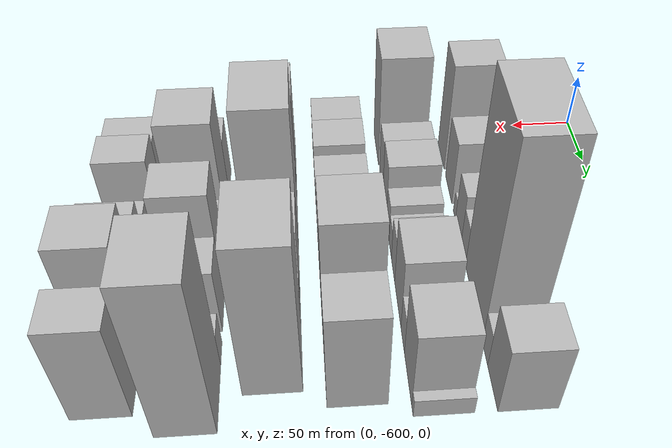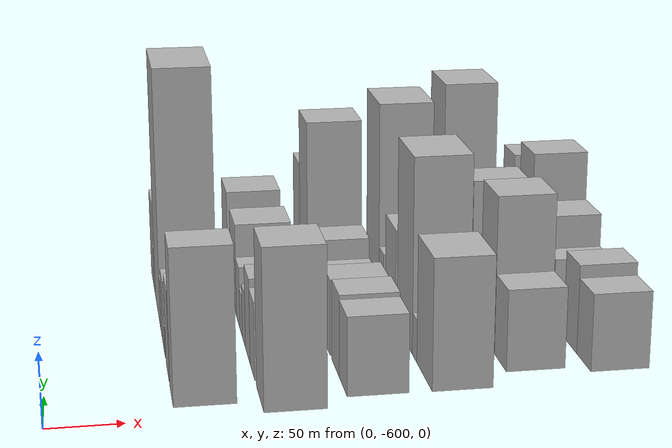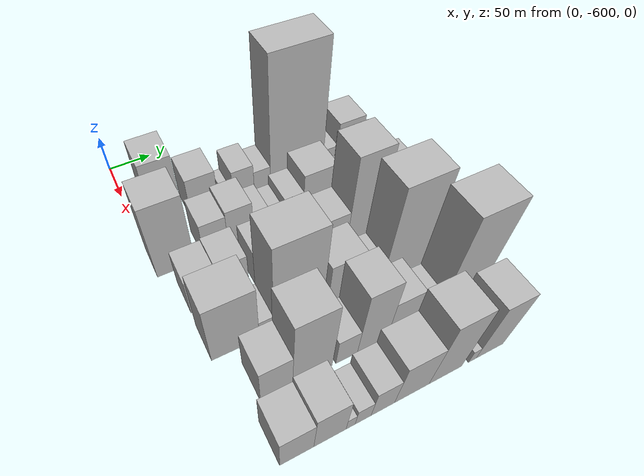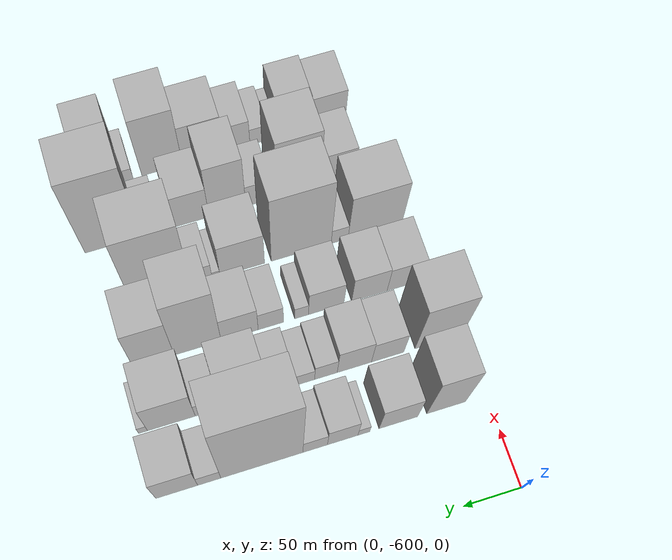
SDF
<sdf version="1.6">
 <world name="default">
  <model name="building_8">
   <static>1</static>
   <pose>100.0000 -564.1123 0 0.000000 0.000000 0.000000</pose>
   <link name="link">
    <pose>0 0 52.50 0 0 0</pose>
    <collision name="collision"><geometry><box><size>40.0000 33.9147 105.0000</size></box></geometry></collision>
    <visual name="visual">
     <cast_shadows>0</cast_shadows>
     <geometry><box><size>40.0000 33.9147 105.0000</size></box></geometry>
     <material>
      <script>
       <uri>model://HANNAS_wall/materials/scripts</uri>
       <uri>model://HANNAS_wall/materials/textures</uri>
       <name>vrc/HANNAS_wall</name>
      </script>
     </material>
    </visual>
   </link>
  </model>
  <model name="building_9">
   <static>1</static>
   <pose>100.0000 -522.4168 0 0.000000 0.000000 0.000000</pose>
   <link name="link">
    <pose>0 0 31.50 0 0 0</pose>
    <collision name="collision"><geometry><box><size>40.0000 33.4762 63.0000</size></box></geometry></collision>
    <visual name="visual">
     <cast_shadows>0</cast_shadows>
     <geometry><box><size>40.0000 33.4762 63.0000</size></box></geometry>
     <material>
      <script>
       <uri>model://HANNAS_wall/materials/scripts</uri>
       <uri>model://HANNAS_wall/materials/textures</uri>
       <name>vrc/HANNAS_wall</name>
      </script>
     </material>
    </visual>
   </link>
  </model>
  <model name="building_10">
   <static>1</static>
   <pose>100.0000 -492.5437 0 0.000000 0.000000 0.000000</pose>
   <link name="link">
    <pose>0 0 10.50 0 0 0</pose>
    <collision name="collision"><geometry><box><size>40.0000 10.2700 21.0000</size></box></geometry></collision>
    <visual name="visual">
     <cast_shadows>0</cast_shadows>
     <geometry><box><size>40.0000 10.2700 21.0000</size></box></geometry>
     <material>
      <script>
       <uri>model://HANNAS_wall/materials/scripts</uri>
       <uri>model://HANNAS_wall/materials/textures</uri>
       <name>vrc/HANNAS_wall</name>
      </script>
     </material>
    </visual>
   </link>
  </model>
  <model name="building_11">
   <static>1</static>
   <pose>100.0000 -474.2443 0 0.000000 0.000000 0.000000</pose>
   <link name="link">
    <pose>0 0 25.50 0 0 0</pose>
    <collision name="collision"><geometry><box><size>40.0000 26.3288 51.0000</size></box></geometry></collision>
    <visual name="visual">
     <cast_shadows>0</cast_shadows>
     <geometry><box><size>40.0000 26.3288 51.0000</size></box></geometry>
     <material>
      <script>
       <uri>model://HANNAS_wall/materials/scripts</uri>
       <uri>model://HANNAS_wall/materials/textures</uri>
       <name>vrc/HANNAS_wall</name>
      </script>
     </material>
    </visual>
   </link>
  </model>
  <model name="building_12">
   <static>1</static>
   <pose>100.0000 -450.5782 0 0.000000 0.000000 0.000000</pose>
   <link name="link">
    <pose>0 0 19.50 0 0 0</pose>
    <collision name="collision"><geometry><box><size>40.0000 21.0034 39.0000</size></box></geometry></collision>
    <visual name="visual">
     <cast_shadows>0</cast_shadows>
     <geometry><box><size>40.0000 21.0034 39.0000</size></box></geometry>
     <material>
      <script>
       <uri>model://HANNAS_wall/materials/scripts</uri>
       <uri>model://HANNAS_wall/materials/textures</uri>
       <name>vrc/HANNAS_wall</name>
      </script>
     </material>
    </visual>
   </link>
  </model>
  <model name="building_13">
   <static>1</static>
   <pose>100.0000 -405.2971 0 0.000000 0.000000 0.000000</pose>
   <link name="link">
    <pose>0 0 93.00 0 0 0</pose>
    <collision name="collision"><geometry><box><size>40.0000 69.5590 186.0000</size></box></geometry></collision>
    <visual name="visual">
     <cast_shadows>0</cast_shadows>
     <geometry><box><size>40.0000 69.5590 186.0000</size></box></geometry>
     <material>
      <script>
       <uri>model://HANNAS_wall/materials/scripts</uri>
       <uri>model://HANNAS_wall/materials/textures</uri>
       <name>vrc/HANNAS_wall</name>
      </script>
     </material>
    </visual>
   </link>
  </model>
  <model name="building_14">
   <static>1</static>
   <pose>100.0000 -360.7872 0 0.000000 0.000000 0.000000</pose>
   <link name="link">
    <pose>0 0 16.50 0 0 0</pose>
    <collision name="collision"><geometry><box><size>40.0000 19.4608 33.0000</size></box></geometry></collision>
    <visual name="visual">
     <cast_shadows>0</cast_shadows>
     <geometry><box><size>40.0000 19.4608 33.0000</size></box></geometry>
     <material>
      <script>
       <uri>model://HANNAS_wall/materials/scripts</uri>
       <uri>model://HANNAS_wall/materials/textures</uri>
       <name>vrc/HANNAS_wall</name>
      </script>
     </material>
    </visual>
   </link>
  </model>
  <model name="building_15">
   <static>1</static>
   <pose>100.0000 -333.5483 0 0.000000 0.000000 0.000000</pose>
   <link name="link">
    <pose>0 0 33.00 0 0 0</pose>
    <collision name="collision"><geometry><box><size>40.0000 35.0169 66.0000</size></box></geometry></collision>
    <visual name="visual">
     <cast_shadows>0</cast_shadows>
     <geometry><box><size>40.0000 35.0169 66.0000</size></box></geometry>
     <material>
      <script>
       <uri>model://HANNAS_wall/materials/scripts</uri>
       <uri>model://HANNAS_wall/materials/textures</uri>
       <name>vrc/HANNAS_wall</name>
      </script>
     </material>
    </visual>
   </link>
  </model>
  <model name="building_60">
   <static>1</static>
   <pose>155.0000 -577.2388 0 0.000000 0.000000 0.000000</pose>
   <link name="link">
    <pose>0 0 54.00 0 0 0</pose>
    <collision name="collision"><geometry><box><size>40.0000 42.0971 108.0000</size></box></geometry></collision>
    <visual name="visual">
     <cast_shadows>0</cast_shadows>
     <geometry><box><size>40.0000 42.0971 108.0000</size></box></geometry>
     <material>
      <script>
       <uri>model://HANNAS_wall/materials/scripts</uri>
       <uri>model://HANNAS_wall/materials/textures</uri>
       <name>vrc/HANNAS_wall</name>
      </script>
     </material>
    </visual>
   </link>
  </model>
  <model name="building_61">
   <static>1</static>
   <pose>155.0000 -531.8750 0 0.000000 0.000000 0.000000</pose>
   <link name="link">
    <pose>0 0 27.00 0 0 0</pose>
    <collision name="collision"><geometry><box><size>40.0000 28.6306 54.0000</size></box></geometry></collision>
    <visual name="visual">
     <cast_shadows>0</cast_shadows>
     <geometry><box><size>40.0000 28.6306 54.0000</size></box></geometry>
     <material>
      <script>
       <uri>model://HANNAS_wall/materials/scripts</uri>
       <uri>model://HANNAS_wall/materials/textures</uri>
       <name>vrc/HANNAS_wall</name>
      </script>
     </material>
    </visual>
   </link>
  </model>
  <model name="building_62">
   <static>1</static>
   <pose>155.0000 -502.5242 0 0.000000 0.000000 0.000000</pose>
   <link name="link">
    <pose>0 0 30.00 0 0 0</pose>
    <collision name="collision"><geometry><box><size>40.0000 30.0711 60.0000</size></box></geometry></collision>
    <visual name="visual">
     <cast_shadows>0</cast_shadows>
     <geometry><box><size>40.0000 30.0711 60.0000</size></box></geometry>
     <material>
      <script>
       <uri>model://HANNAS_wall/materials/scripts</uri>
       <uri>model://HANNAS_wall/materials/textures</uri>
       <name>vrc/HANNAS_wall</name>
      </script>
     </material>
    </visual>
   </link>
  </model>
  <model name="building_63">
   <static>1</static>
   <pose>155.0000 -477.6024 0 0.000000 0.000000 0.000000</pose>
   <link name="link">
    <pose>0 0 19.50 0 0 0</pose>
    <collision name="collision"><geometry><box><size>40.0000 19.7726 39.0000</size></box></geometry></collision>
    <visual name="visual">
     <cast_shadows>0</cast_shadows>
     <geometry><box><size>40.0000 19.7726 39.0000</size></box></geometry>
     <material>
      <script>
       <uri>model://HANNAS_wall/materials/scripts</uri>
       <uri>model://HANNAS_wall/materials/textures</uri>
       <name>vrc/HANNAS_wall</name>
      </script>
     </material>
    </visual>
   </link>
  </model>
  <model name="building_64">
   <static>1</static>
   <pose>155.0000 -458.9212 0 0.000000 0.000000 0.000000</pose>
   <link name="link">
    <pose>0 0 15.00 0 0 0</pose>
    <collision name="collision"><geometry><box><size>40.0000 17.5897 30.0000</size></box></geometry></collision>
    <visual name="visual">
     <cast_shadows>0</cast_shadows>
     <geometry><box><size>40.0000 17.5897 30.0000</size></box></geometry>
     <material>
      <script>
       <uri>model://HANNAS_wall/materials/scripts</uri>
       <uri>model://HANNAS_wall/materials/textures</uri>
       <name>vrc/HANNAS_wall</name>
      </script>
     </material>
    </visual>
   </link>
  </model>
  <model name="building_65">
   <static>1</static>
   <pose>155.0000 -438.3830 0 0.000000 0.000000 0.000000</pose>
   <link name="link">
    <pose>0 0 22.50 0 0 0</pose>
    <collision name="collision"><geometry><box><size>40.0000 23.4865 45.0000</size></box></geometry></collision>
    <visual name="visual">
     <cast_shadows>0</cast_shadows>
     <geometry><box><size>40.0000 23.4865 45.0000</size></box></geometry>
     <material>
      <script>
       <uri>model://HANNAS_wall/materials/scripts</uri>
       <uri>model://HANNAS_wall/materials/textures</uri>
       <name>vrc/HANNAS_wall</name>
      </script>
     </material>
    </visual>
   </link>
  </model>
  <model name="building_66">
   <static>1</static>
   <pose>155.0000 -406.3846 0 0.000000 0.000000 0.000000</pose>
   <link name="link">
    <pose>0 0 34.50 0 0 0</pose>
    <collision name="collision"><geometry><box><size>40.0000 40.5104 69.0000</size></box></geometry></collision>
    <visual name="visual">
     <cast_shadows>0</cast_shadows>
     <geometry><box><size>40.0000 40.5104 69.0000</size></box></geometry>
     <material>
      <script>
       <uri>model://HANNAS_wall/materials/scripts</uri>
       <uri>model://HANNAS_wall/materials/textures</uri>
       <name>vrc/HANNAS_wall</name>
      </script>
     </material>
    </visual>
   </link>
  </model>
  <model name="building_67">
   <static>1</static>
   <pose>155.0000 -375.4196 0 0.000000 0.000000 0.000000</pose>
   <link name="link">
    <pose>0 0 18.00 0 0 0</pose>
    <collision name="collision"><geometry><box><size>40.0000 21.4194 36.0000</size></box></geometry></collision>
    <visual name="visual">
     <cast_shadows>0</cast_shadows>
     <geometry><box><size>40.0000 21.4194 36.0000</size></box></geometry>
     <material>
      <script>
       <uri>model://HANNAS_wall/materials/scripts</uri>
       <uri>model://HANNAS_wall/materials/textures</uri>
       <name>vrc/HANNAS_wall</name>
      </script>
     </material>
    </visual>
   </link>
  </model>
  <model name="building_68">
   <static>1</static>
   <pose>155.0000 -344.3547 0 0.000000 0.000000 0.000000</pose>
   <link name="link">
    <pose>0 0 37.50 0 0 0</pose>
    <collision name="collision"><geometry><box><size>40.0000 40.7104 75.0000</size></box></geometry></collision>
    <visual name="visual">
     <cast_shadows>0</cast_shadows>
     <geometry><box><size>40.0000 40.7104 75.0000</size></box></geometry>
     <material>
      <script>
       <uri>model://HANNAS_wall/materials/scripts</uri>
       <uri>model://HANNAS_wall/materials/textures</uri>
       <name>vrc/HANNAS_wall</name>
      </script>
     </material>
    </visual>
   </link>
  </model>
  <model name="building_69">
   <static>1</static>
   <pose>155.0000 -320.2169 0 0.000000 0.000000 0.000000</pose>
   <link name="link">
    <pose>0 0 9.00 0 0 0</pose>
    <collision name="collision"><geometry><box><size>40.0000 7.5652 18.0000</size></box></geometry></collision>
    <visual name="visual">
     <cast_shadows>0</cast_shadows>
     <geometry><box><size>40.0000 7.5652 18.0000</size></box></geometry>
     <material>
      <script>
       <uri>model://HANNAS_wall/materials/scripts</uri>
       <uri>model://HANNAS_wall/materials/textures</uri>
       <name>vrc/HANNAS_wall</name>
      </script>
     </material>
    </visual>
   </link>
  </model>
  <model name="building_109">
   <static>1</static>
   <pose>210.0000 -566.1874 0 0.000000 0.000000 0.000000</pose>
   <link name="link">
    <pose>0 0 27.00 0 0 0</pose>
    <collision name="collision"><geometry><box><size>40.0000 31.9362 54.0000</size></box></geometry></collision>
    <visual name="visual">
     <cast_shadows>0</cast_shadows>
     <geometry><box><size>40.0000 31.9362 54.0000</size></box></geometry>
     <material>
      <script>
       <uri>model://HANNAS_wall/materials/scripts</uri>
       <uri>model://HANNAS_wall/materials/textures</uri>
       <name>vrc/HANNAS_wall</name>
      </script>
     </material>
    </visual>
   </link>
  </model>
  <model name="building_110">
   <static>1</static>
   <pose>210.0000 -534.3283 0 0.000000 0.000000 0.000000</pose>
   <link name="link">
    <pose>0 0 28.50 0 0 0</pose>
    <collision name="collision"><geometry><box><size>40.0000 31.7820 57.0000</size></box></geometry></collision>
    <visual name="visual">
     <cast_shadows>0</cast_shadows>
     <geometry><box><size>40.0000 31.7820 57.0000</size></box></geometry>
     <material>
      <script>
       <uri>model://HANNAS_wall/materials/scripts</uri>
       <uri>model://HANNAS_wall/materials/textures</uri>
       <name>vrc/HANNAS_wall</name>
      </script>
     </material>
    </visual>
   </link>
  </model>
  <model name="building_111">
   <static>1</static>
   <pose>210.0000 -495.6723 0 0.000000 0.000000 0.000000</pose>
   <link name="link">
    <pose>0 0 27.00 0 0 0</pose>
    <collision name="collision"><geometry><box><size>40.0000 31.5301 54.0000</size></box></geometry></collision>
    <visual name="visual">
     <cast_shadows>0</cast_shadows>
     <geometry><box><size>40.0000 31.5301 54.0000</size></box></geometry>
     <material>
      <script>
       <uri>model://HANNAS_wall/materials/scripts</uri>
       <uri>model://HANNAS_wall/materials/textures</uri>
       <name>vrc/HANNAS_wall</name>
      </script>
     </material>
    </visual>
   </link>
  </model>
  <model name="building_112">
   <static>1</static>
   <pose>210.0000 -473.8277 0 0.000000 0.000000 0.000000</pose>
   <link name="link">
    <pose>0 0 13.50 0 0 0</pose>
    <collision name="collision"><geometry><box><size>40.0000 12.1591 27.0000</size></box></geometry></collision>
    <visual name="visual">
     <cast_shadows>0</cast_shadows>
     <geometry><box><size>40.0000 12.1591 27.0000</size></box></geometry>
     <material>
      <script>
       <uri>model://HANNAS_wall/materials/scripts</uri>
       <uri>model://HANNAS_wall/materials/textures</uri>
       <name>vrc/HANNAS_wall</name>
      </script>
     </material>
    </visual>
   </link>
  </model>
  <model name="building_113">
   <static>1</static>
   <pose>210.0000 -446.6222 0 0.000000 0.000000 0.000000</pose>
   <link name="link">
    <pose>0 0 21.00 0 0 0</pose>
    <collision name="collision"><geometry><box><size>40.0000 22.2520 42.0000</size></box></geometry></collision>
    <visual name="visual">
     <cast_shadows>0</cast_shadows>
     <geometry><box><size>40.0000 22.2520 42.0000</size></box></geometry>
     <material>
      <script>
       <uri>model://HANNAS_wall/materials/scripts</uri>
       <uri>model://HANNAS_wall/materials/textures</uri>
       <name>vrc/HANNAS_wall</name>
      </script>
     </material>
    </visual>
   </link>
  </model>
  <model name="building_114">
   <static>1</static>
   <pose>210.0000 -419.2208 0 0.000000 0.000000 0.000000</pose>
   <link name="link">
    <pose>0 0 28.50 0 0 0</pose>
    <collision name="collision"><geometry><box><size>40.0000 32.5506 57.0000</size></box></geometry></collision>
    <visual name="visual">
     <cast_shadows>0</cast_shadows>
     <geometry><box><size>40.0000 32.5506 57.0000</size></box></geometry>
     <material>
      <script>
       <uri>model://HANNAS_wall/materials/scripts</uri>
       <uri>model://HANNAS_wall/materials/textures</uri>
       <name>vrc/HANNAS_wall</name>
      </script>
     </material>
    </visual>
   </link>
  </model>
  <model name="building_115">
   <static>1</static>
   <pose>210.0000 -382.5174 0 0.000000 0.000000 0.000000</pose>
   <link name="link">
    <pose>0 0 67.50 0 0 0</pose>
    <collision name="collision"><geometry><box><size>40.0000 40.8563 135.0000</size></box></geometry></collision>
    <visual name="visual">
     <cast_shadows>0</cast_shadows>
     <geometry><box><size>40.0000 40.8563 135.0000</size></box></geometry>
     <material>
      <script>
       <uri>model://HANNAS_wall/materials/scripts</uri>
       <uri>model://HANNAS_wall/materials/textures</uri>
       <name>vrc/HANNAS_wall</name>
      </script>
     </material>
    </visual>
   </link>
  </model>
  <model name="building_116">
   <static>1</static>
   <pose>210.0000 -344.3401 0 0.000000 0.000000 0.000000</pose>
   <link name="link">
    <pose>0 0 46.50 0 0 0</pose>
    <collision name="collision"><geometry><box><size>40.0000 35.4983 93.0000</size></box></geometry></collision>
    <visual name="visual">
     <cast_shadows>0</cast_shadows>
     <geometry><box><size>40.0000 35.4983 93.0000</size></box></geometry>
     <material>
      <script>
       <uri>model://HANNAS_wall/materials/scripts</uri>
       <uri>model://HANNAS_wall/materials/textures</uri>
       <name>vrc/HANNAS_wall</name>
      </script>
     </material>
    </visual>
   </link>
  </model>
  <model name="building_157">
   <static>1</static>
   <pose>265.0000 -558.1128 0 0.000000 0.000000 0.000000</pose>
   <link name="link">
    <pose>0 0 45.00 0 0 0</pose>
    <collision name="collision"><geometry><box><size>40.0000 49.4691 90.0000</size></box></geometry></collision>
    <visual name="visual">
     <cast_shadows>0</cast_shadows>
     <geometry><box><size>40.0000 49.4691 90.0000</size></box></geometry>
     <material>
      <script>
       <uri>model://HANNAS_wall/materials/scripts</uri>
       <uri>model://HANNAS_wall/materials/textures</uri>
       <name>vrc/HANNAS_wall</name>
      </script>
     </material>
    </visual>
   </link>
  </model>
  <model name="building_158">
   <static>1</static>
   <pose>265.0000 -525.6977 0 0.000000 0.000000 0.000000</pose>
   <link name="link">
    <pose>0 0 15.00 0 0 0</pose>
    <collision name="collision"><geometry><box><size>40.0000 15.3612 30.0000</size></box></geometry></collision>
    <visual name="visual">
     <cast_shadows>0</cast_shadows>
     <geometry><box><size>40.0000 15.3612 30.0000</size></box></geometry>
     <material>
      <script>
       <uri>model://HANNAS_wall/materials/scripts</uri>
       <uri>model://HANNAS_wall/materials/textures</uri>
       <name>vrc/HANNAS_wall</name>
      </script>
     </material>
    </visual>
   </link>
  </model>
  <model name="building_159">
   <static>1</static>
   <pose>265.0000 -490.9596 0 0.000000 0.000000 0.000000</pose>
   <link name="link">
    <pose>0 0 69.00 0 0 0</pose>
    <collision name="collision"><geometry><box><size>40.0000 54.1150 138.0000</size></box></geometry></collision>
    <visual name="visual">
     <cast_shadows>0</cast_shadows>
     <geometry><box><size>40.0000 54.1150 138.0000</size></box></geometry>
     <material>
      <script>
       <uri>model://HANNAS_wall/materials/scripts</uri>
       <uri>model://HANNAS_wall/materials/textures</uri>
       <name>vrc/HANNAS_wall</name>
      </script>
     </material>
    </visual>
   </link>
  </model>
  <model name="building_160">
   <static>1</static>
   <pose>265.0000 -438.0370 0 0.000000 0.000000 0.000000</pose>
   <link name="link">
    <pose>0 0 34.50 0 0 0</pose>
    <collision name="collision"><geometry><box><size>40.0000 39.7303 69.0000</size></box></geometry></collision>
    <visual name="visual">
     <cast_shadows>0</cast_shadows>
     <geometry><box><size>40.0000 39.7303 69.0000</size></box></geometry>
     <material>
      <script>
       <uri>model://HANNAS_wall/materials/scripts</uri>
       <uri>model://HANNAS_wall/materials/textures</uri>
       <name>vrc/HANNAS_wall</name>
      </script>
     </material>
    </visual>
   </link>
  </model>
  <model name="building_161">
   <static>1</static>
   <pose>265.0000 -414.6934 0 0.000000 0.000000 0.000000</pose>
   <link name="link">
    <pose>0 0 7.50 0 0 0</pose>
    <collision name="collision"><geometry><box><size>40.0000 6.9567 15.0000</size></box></geometry></collision>
    <visual name="visual">
     <cast_shadows>0</cast_shadows>
     <geometry><box><size>40.0000 6.9567 15.0000</size></box></geometry>
     <material>
      <script>
       <uri>model://HANNAS_wall/materials/scripts</uri>
       <uri>model://HANNAS_wall/materials/textures</uri>
       <name>vrc/HANNAS_wall</name>
      </script>
     </material>
    </visual>
   </link>
  </model>
  <model name="building_162">
   <static>1</static>
   <pose>265.0000 -401.9398 0 0.000000 0.000000 0.000000</pose>
   <link name="link">
    <pose>0 0 18.00 0 0 0</pose>
    <collision name="collision"><geometry><box><size>40.0000 18.5506 36.0000</size></box></geometry></collision>
    <visual name="visual">
     <cast_shadows>0</cast_shadows>
     <geometry><box><size>40.0000 18.5506 36.0000</size></box></geometry>
     <material>
      <script>
       <uri>model://HANNAS_wall/materials/scripts</uri>
       <uri>model://HANNAS_wall/materials/textures</uri>
       <name>vrc/HANNAS_wall</name>
      </script>
     </material>
    </visual>
   </link>
  </model>
  <model name="building_163">
   <static>1</static>
   <pose>265.0000 -366.1361 0 0.000000 0.000000 0.000000</pose>
   <link name="link">
    <pose>0 0 72.00 0 0 0</pose>
    <collision name="collision"><geometry><box><size>40.0000 53.0567 144.0000</size></box></geometry></collision>
    <visual name="visual">
     <cast_shadows>0</cast_shadows>
     <geometry><box><size>40.0000 53.0567 144.0000</size></box></geometry>
     <material>
      <script>
       <uri>model://HANNAS_wall/materials/scripts</uri>
       <uri>model://HANNAS_wall/materials/textures</uri>
       <name>vrc/HANNAS_wall</name>
      </script>
     </material>
    </visual>
   </link>
  </model>
  <model name="building_208">
   <static>1</static>
   <pose>320.0000 -542.3988 0 0.000000 0.000000 0.000000</pose>
   <link name="link">
    <pose>0 0 28.50 0 0 0</pose>
    <collision name="collision"><geometry><box><size>40.0000 32.1776 57.0000</size></box></geometry></collision>
    <visual name="visual">
     <cast_shadows>0</cast_shadows>
     <geometry><box><size>40.0000 32.1776 57.0000</size></box></geometry>
     <material>
      <script>
       <uri>model://HANNAS_wall/materials/scripts</uri>
       <uri>model://HANNAS_wall/materials/textures</uri>
       <name>vrc/HANNAS_wall</name>
      </script>
     </material>
    </visual>
   </link>
  </model>
  <model name="building_209">
   <static>1</static>
   <pose>320.0000 -505.6804 0 0.000000 0.000000 0.000000</pose>
   <link name="link">
    <pose>0 0 55.50 0 0 0</pose>
    <collision name="collision"><geometry><box><size>40.0000 41.2592 111.0000</size></box></geometry></collision>
    <visual name="visual">
     <cast_shadows>0</cast_shadows>
     <geometry><box><size>40.0000 41.2592 111.0000</size></box></geometry>
     <material>
      <script>
       <uri>model://HANNAS_wall/materials/scripts</uri>
       <uri>model://HANNAS_wall/materials/textures</uri>
       <name>vrc/HANNAS_wall</name>
      </script>
     </material>
    </visual>
   </link>
  </model>
  <model name="building_210">
   <static>1</static>
   <pose>320.0000 -469.3583 0 0.000000 0.000000 0.000000</pose>
   <link name="link">
    <pose>0 0 21.00 0 0 0</pose>
    <collision name="collision"><geometry><box><size>40.0000 23.3848 42.0000</size></box></geometry></collision>
    <visual name="visual">
     <cast_shadows>0</cast_shadows>
     <geometry><box><size>40.0000 23.3848 42.0000</size></box></geometry>
     <material>
      <script>
       <uri>model://HANNAS_wall/materials/scripts</uri>
       <uri>model://HANNAS_wall/materials/textures</uri>
       <name>vrc/HANNAS_wall</name>
      </script>
     </material>
    </visual>
   </link>
  </model>
  <model name="building_211">
   <static>1</static>
   <pose>320.0000 -441.0327 0 0.000000 0.000000 0.000000</pose>
   <link name="link">
    <pose>0 0 51.00 0 0 0</pose>
    <collision name="collision"><geometry><box><size>40.0000 33.2664 102.0000</size></box></geometry></collision>
    <visual name="visual">
     <cast_shadows>0</cast_shadows>
     <geometry><box><size>40.0000 33.2664 102.0000</size></box></geometry>
     <material>
      <script>
       <uri>model://HANNAS_wall/materials/scripts</uri>
       <uri>model://HANNAS_wall/materials/textures</uri>
       <name>vrc/HANNAS_wall</name>
      </script>
     </material>
    </visual>
   </link>
  </model>
  <model name="building_212">
   <static>1</static>
   <pose>320.0000 -408.1252 0 0.000000 0.000000 0.000000</pose>
   <link name="link">
    <pose>0 0 31.50 0 0 0</pose>
    <collision name="collision"><geometry><box><size>40.0000 32.5486 63.0000</size></box></geometry></collision>
    <visual name="visual">
     <cast_shadows>0</cast_shadows>
     <geometry><box><size>40.0000 32.5486 63.0000</size></box></geometry>
     <material>
      <script>
       <uri>model://HANNAS_wall/materials/scripts</uri>
       <uri>model://HANNAS_wall/materials/textures</uri>
       <name>vrc/HANNAS_wall</name>
      </script>
     </material>
    </visual>
   </link>
  </model>
  <model name="building_213">
   <static>1</static>
   <pose>320.0000 -373.1142 0 0.000000 0.000000 0.000000</pose>
   <link name="link">
    <pose>0 0 16.50 0 0 0</pose>
    <collision name="collision"><geometry><box><size>40.0000 19.4733 33.0000</size></box></geometry></collision>
    <visual name="visual">
     <cast_shadows>0</cast_shadows>
     <geometry><box><size>40.0000 19.4733 33.0000</size></box></geometry>
     <material>
      <script>
       <uri>model://HANNAS_wall/materials/scripts</uri>
       <uri>model://HANNAS_wall/materials/textures</uri>
       <name>vrc/HANNAS_wall</name>
      </script>
     </material>
    </visual>
   </link>
  </model>
  <model name="building_214">
   <static>1</static>
   <pose>320.0000 -338.2332 0 0.000000 0.000000 0.000000</pose>
   <link name="link">
    <pose>0 0 75.00 0 0 0</pose>
    <collision name="collision"><geometry><box><size>40.0000 50.2886 150.0000</size></box></geometry></collision>
    <visual name="visual">
     <cast_shadows>0</cast_shadows>
     <geometry><box><size>40.0000 50.2886 150.0000</size></box></geometry>
     <material>
      <script>
       <uri>model://HANNAS_wall/materials/scripts</uri>
       <uri>model://HANNAS_wall/materials/textures</uri>
       <name>vrc/HANNAS_wall</name>
      </script>
     </material>
    </visual>
   </link>
  </model>
  <model name="building_253">
   <static>1</static>
   <pose>375.0000 -551.1773 0 0.000000 0.000000 0.000000</pose>
   <link name="link">
    <pose>0 0 27.00 0 0 0</pose>
    <collision name="collision"><geometry><box><size>40.0000 32.2824 54.0000</size></box></geometry></collision>
    <visual name="visual">
     <cast_shadows>0</cast_shadows>
     <geometry><box><size>40.0000 32.2824 54.0000</size></box></geometry>
     <material>
      <script>
       <uri>model://HANNAS_wall/materials/scripts</uri>
       <uri>model://HANNAS_wall/materials/textures</uri>
       <name>vrc/HANNAS_wall</name>
      </script>
     </material>
    </visual>
   </link>
  </model>
  <model name="building_254">
   <static>1</static>
   <pose>375.0000 -519.2331 0 0.000000 0.000000 0.000000</pose>
   <link name="link">
    <pose>0 0 31.50 0 0 0</pose>
    <collision name="collision"><geometry><box><size>40.0000 31.6061 63.0000</size></box></geometry></collision>
    <visual name="visual">
     <cast_shadows>0</cast_shadows>
     <geometry><box><size>40.0000 31.6061 63.0000</size></box></geometry>
     <material>
      <script>
       <uri>model://HANNAS_wall/materials/scripts</uri>
       <uri>model://HANNAS_wall/materials/textures</uri>
       <name>vrc/HANNAS_wall</name>
      </script>
     </material>
    </visual>
   </link>
  </model>
  <model name="building_255">
   <static>1</static>
   <pose>375.0000 -498.8553 0 0.000000 0.000000 0.000000</pose>
   <link name="link">
    <pose>0 0 10.50 0 0 0</pose>
    <collision name="collision"><geometry><box><size>40.0000 9.1496 21.0000</size></box></geometry></collision>
    <visual name="visual">
     <cast_shadows>0</cast_shadows>
     <geometry><box><size>40.0000 9.1496 21.0000</size></box></geometry>
     <material>
      <script>
       <uri>model://HANNAS_wall/materials/scripts</uri>
       <uri>model://HANNAS_wall/materials/textures</uri>
       <name>vrc/HANNAS_wall</name>
      </script>
     </material>
    </visual>
   </link>
  </model>
  <model name="building_256">
   <static>1</static>
   <pose>375.0000 -486.1285 0 0.000000 0.000000 0.000000</pose>
   <link name="link">
    <pose>0 0 15.00 0 0 0</pose>
    <collision name="collision"><geometry><box><size>40.0000 16.3040 30.0000</size></box></geometry></collision>
    <visual name="visual">
     <cast_shadows>0</cast_shadows>
     <geometry><box><size>40.0000 16.3040 30.0000</size></box></geometry>
     <material>
      <script>
       <uri>model://HANNAS_wall/materials/scripts</uri>
       <uri>model://HANNAS_wall/materials/textures</uri>
       <name>vrc/HANNAS_wall</name>
      </script>
     </material>
    </visual>
   </link>
  </model>
  <model name="building_257">
   <static>1</static>
   <pose>375.0000 -465.7104 0 0.000000 0.000000 0.000000</pose>
   <link name="link">
    <pose>0 0 24.00 0 0 0</pose>
    <collision name="collision"><geometry><box><size>40.0000 24.5322 48.0000</size></box></geometry></collision>
    <visual name="visual">
     <cast_shadows>0</cast_shadows>
     <geometry><box><size>40.0000 24.5322 48.0000</size></box></geometry>
     <material>
      <script>
       <uri>model://HANNAS_wall/materials/scripts</uri>
       <uri>model://HANNAS_wall/materials/textures</uri>
       <name>vrc/HANNAS_wall</name>
      </script>
     </material>
    </visual>
   </link>
  </model>
  <model name="building_258">
   <static>1</static>
   <pose>375.0000 -434.5936 0 0.000000 0.000000 0.000000</pose>
   <link name="link">
    <pose>0 0 36.00 0 0 0</pose>
    <collision name="collision"><geometry><box><size>40.0000 37.7013 72.0000</size></box></geometry></collision>
    <visual name="visual">
     <cast_shadows>0</cast_shadows>
     <geometry><box><size>40.0000 37.7013 72.0000</size></box></geometry>
     <material>
      <script>
       <uri>model://HANNAS_wall/materials/scripts</uri>
       <uri>model://HANNAS_wall/materials/textures</uri>
       <name>vrc/HANNAS_wall</name>
      </script>
     </material>
    </visual>
   </link>
  </model>
  <model name="building_259">
   <static>1</static>
   <pose>375.0000 -397.1641 0 0.000000 0.000000 0.000000</pose>
   <link name="link">
    <pose>0 0 54.00 0 0 0</pose>
    <collision name="collision"><geometry><box><size>40.0000 37.1579 108.0000</size></box></geometry></collision>
    <visual name="visual">
     <cast_shadows>0</cast_shadows>
     <geometry><box><size>40.0000 37.1579 108.0000</size></box></geometry>
     <material>
      <script>
       <uri>model://HANNAS_wall/materials/scripts</uri>
       <uri>model://HANNAS_wall/materials/textures</uri>
       <name>vrc/HANNAS_wall</name>
      </script>
     </material>
    </visual>
   </link>
  </model>
  <model name="building_260">
   <static>1</static>
   <pose>375.0000 -366.1079 0 0.000000 0.000000 0.000000</pose>
   <link name="link">
    <pose>0 0 10.50 0 0 0</pose>
    <collision name="collision"><geometry><box><size>40.0000 8.9545 21.0000</size></box></geometry></collision>
    <visual name="visual">
     <cast_shadows>0</cast_shadows>
     <geometry><box><size>40.0000 8.9545 21.0000</size></box></geometry>
     <material>
      <script>
       <uri>model://HANNAS_wall/materials/scripts</uri>
       <uri>model://HANNAS_wall/materials/textures</uri>
       <name>vrc/HANNAS_wall</name>
      </script>
     </material>
    </visual>
   </link>
  </model>
  <model name="building_261">
   <static>1</static>
   <pose>375.0000 -345.3924 0 0.000000 0.000000 0.000000</pose>
   <link name="link">
    <pose>0 0 46.50 0 0 0</pose>
    <collision name="collision"><geometry><box><size>40.0000 32.4764 93.0000</size></box></geometry></collision>
    <visual name="visual">
     <cast_shadows>0</cast_shadows>
     <geometry><box><size>40.0000 32.4764 93.0000</size></box></geometry>
     <material>
      <script>
       <uri>model://HANNAS_wall/materials/scripts</uri>
       <uri>model://HANNAS_wall/materials/textures</uri>
       <name>vrc/HANNAS_wall</name>
      </script>
     </material>
    </visual>
   </link>
  </model>
 </world>
</sdf>
